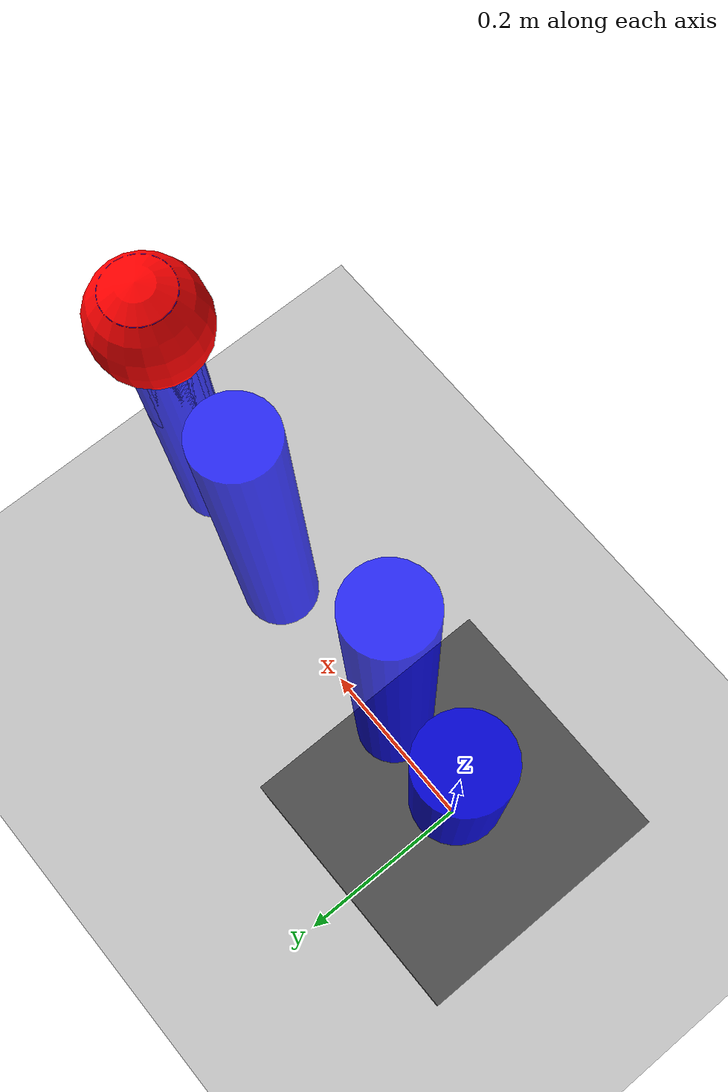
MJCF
<mujoco model="six_axis_robotic_arm">
  <compiler angle="degree" inertiafromgeom="true" autolimits="true"/>
  <option timestep="0.001" gravity="0 0 -9.81" iterations="100" tolerance="1e-6"/>

  <!-- 材质和纹理 -->
  <asset>
    <material name="base_mat" rgba="0.3 0.3 0.3 1"/>
    <material name="link_mat" rgba="0 0 1 0.8"/>
    <material name="end_mat" rgba="1 0 0 0.9"/>
    <texture name="grid" type="2d" builtin="checker" width="512" height="512" rgb1="0.2 0.2 0.2" rgb2="0.3 0.3 0.3"/>
    <material name="floor_mat" texture="grid" texrepeat="10 10" reflectance="0.1"/>
  </asset>

  <!-- 世界体 -->
  <worldbody>
    <light pos="0 0 3" dir="0 0 -1" diffuse="1 1 1" specular="0.1 0.1 0.1"/>
    <camera name="arm_cam" pos="0 -1.5 1" xyaxes="1 0 0 0 0.5 1"/>
    <geom name="floor" type="plane" size="2 2 0.1" pos="0 0 0" material="floor_mat"/>

    <!-- 基座 -->
    <body name="base" pos="0 0 0">
      <geom name="base_geom" type="box" size="0.15 0.15 0.05" material="base_mat" mass="2"/>
      <joint name="base_joint"/>

      <!-- 关节1 -->
      <body name="link1" pos="0 0 0.1">
        <geom name="link1_geom" type="cylinder" size="0.05 0.1" material="link_mat" pos="0 0 0.1" mass="0.5"/>
        <joint name="joint1" type="hinge" axis="0 0 1" range="-180 180" damping="0.05" armature="0.01"/>

        <!-- 关节2 -->
        <body name="link2" pos="0 0 0.2">
          <geom name="link2_geom" type="cylinder" size="0.04 0.2" material="link_mat" pos="0.1 0 0" mass="0.4"/>
          <joint name="joint2" type="hinge" axis="0 1 0" range="-90 90" damping="0.05" armature="0.01"/>

          <!-- 关节3 -->
          <body name="link3" pos="0.2 0 0">
            <geom name="link3_geom" type="cylinder" size="0.04 0.18" material="link_mat" pos="0.09 0 0" mass="0.3"/>
            <joint name="joint3" type="hinge" axis="0 1 0" range="-90 90" damping="0.05" armature="0.01"/>

            <!-- 关节4 -->
            <body name="link4" pos="0.18 0 0">
              <geom name="link4_geom" type="cylinder" size="0.03 0.15" material="link_mat" pos="0 0 0.075" mass="0.2"/>
              <joint name="joint4" type="hinge" axis="0 0 1" range="-180 180" damping="0.05" armature="0.01"/>

              <!-- 关节5 -->
              <body name="link5" pos="0 0 0.15">
                <geom name="link5_geom" type="cylinder" size="0.03 0.08" material="link_mat" pos="0 0 0.04" mass="0.1"/>
                <joint name="joint5" type="hinge" axis="0 1 0" range="-90 90" damping="0.05" armature="0.01"/>

                <!-- 关节6（末端执行器） -->
                <body name="link6" pos="0 0 0.08">
                  <geom name="end_effector" type="sphere" size="0.05" material="end_mat" mass="0.05"/>
                  <joint name="joint6" type="hinge" axis="0 0 1" range="-360 360" damping="0.05" armature="0.01"/>
                </body>
              </body>
            </body>
          </body>
        </body>
      </body>
    </body>
  </worldbody>

  <!-- 控制器（兼容所有MuJoCo版本） -->
  <actuator>
    <position name="act1" joint="joint1" kp="1500" kv="150"/>
    <position name="act2" joint="joint2" kp="1500" kv="150"/>
    <position name="act3" joint="joint3" kp="1500" kv="150"/>
    <position name="act4" joint="joint4" kp="1500" kv="150"/>
    <position name="act5" joint="joint5" kp="1500" kv="150"/>
    <position name="act6" joint="joint6" kp="1500" kv="150"/>
  </actuator>
</mujoco>
